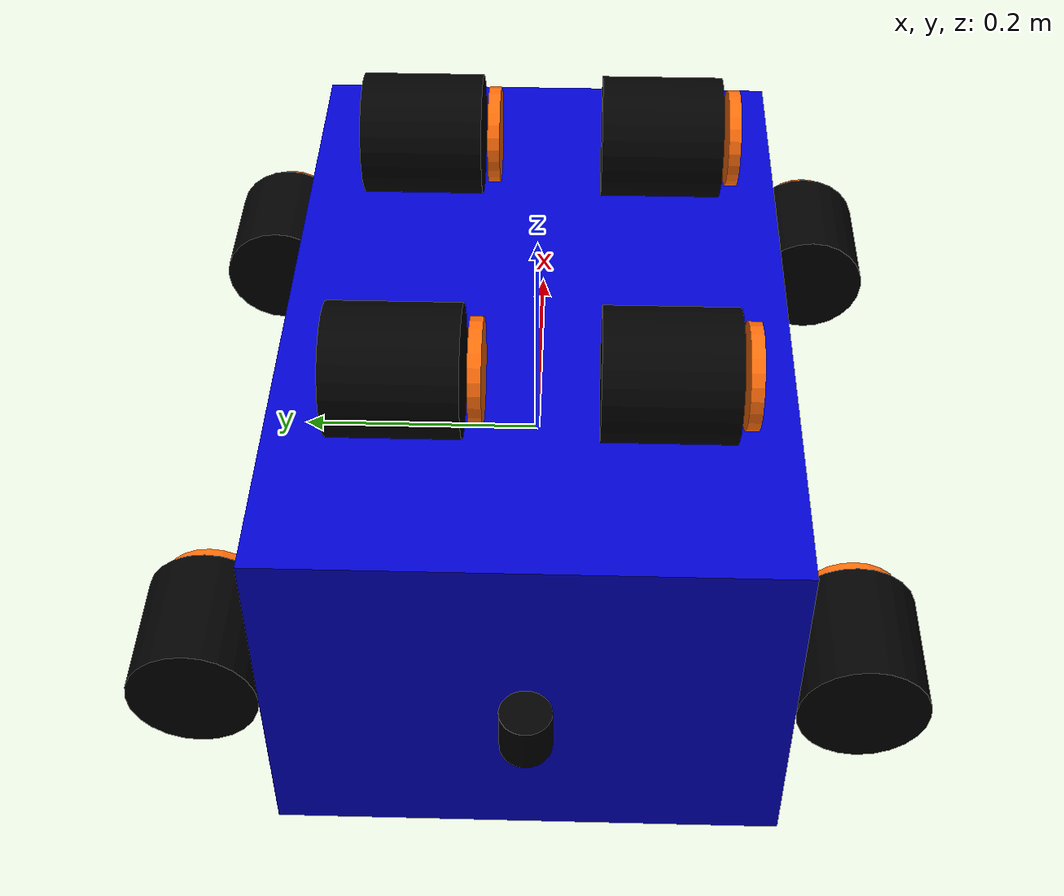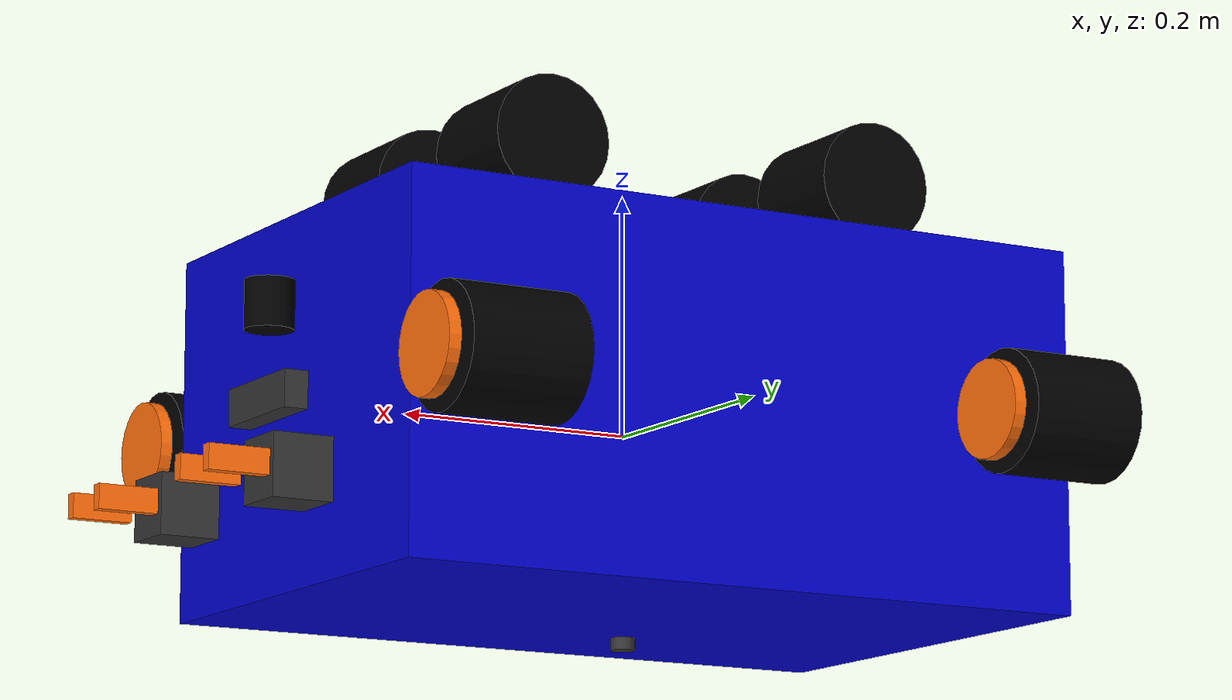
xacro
<?xml version="1.0"?>
<robot name="orca_rov" xmlns:xacro="http://www.ros.org/wiki/xacro">

  <!-- Include material definitions -->
  <xacro:include filename="$(find orca_description)/urdf/materials.xacro" />

  <!-- Include thruster macros -->
  <xacro:include filename="$(find orca_description)/urdf/thrusters.xacro" />

  <!-- Include sensor macros -->
  <xacro:include filename="$(find orca_description)/urdf/sensors.xacro" />

  <!-- Include gripper macros -->
  <xacro:include filename="$(find orca_description)/urdf/grippers.xacro" />

  <!-- Base Properties -->
  <xacro:property name="body_length" value="0.6" />
  <xacro:property name="body_width" value="0.4" />
  <xacro:property name="body_height" value="0.3" />
  <xacro:property name="body_mass" value="20.0" />

  <!-- Base Link (ROV Body) -->
  <link name="base_link">
    <inertial>
      <mass value="${body_mass}" />
      <origin xyz="0 0 0" rpy="0 0 0" />
      <inertia
        ixx="${body_mass/12.0 * (body_height*body_height + body_width*body_width)}"
        ixy="0.0"
        ixz="0.0"
        iyy="${body_mass/12.0 * (body_length*body_length + body_height*body_height)}"
        iyz="0.0"
        izz="${body_mass/12.0 * (body_length*body_length + body_width*body_width)}" />
    </inertial>

    <visual>
      <origin xyz="0 0 0" rpy="0 0 0" />
      <geometry>
        <box size="${body_length} ${body_width} ${body_height}" />
      </geometry>
      <material name="blue" />
    </visual>

    <collision>
      <origin xyz="0 0 0" rpy="0 0 0" />
      <geometry>
        <box size="${body_length} ${body_width} ${body_height}" />
      </geometry>
    </collision>
  </link>

  <!-- Add thrusters -->
  <xacro:t200_thruster name="thruster_front_right" parent="base_link" xyz="${body_length/2-0.05} ${-body_width/2-0.05} 0" rpy="0 ${pi/2} 0" />
  <xacro:t200_thruster name="thruster_front_left" parent="base_link" xyz="${body_length/2-0.05} ${body_width/2+0.05} 0" rpy="0 ${pi/2} 0" />
  <xacro:t200_thruster name="thruster_rear_right" parent="base_link" xyz="${-body_length/2+0.05} ${-body_width/2-0.05} 0" rpy="0 ${pi/2} 0" />
  <xacro:t200_thruster name="thruster_rear_left" parent="base_link" xyz="${-body_length/2+0.05} ${body_width/2+0.05} 0" rpy="0 ${pi/2} 0" />

  <xacro:t200_thruster name="thruster_top_front_right" parent="base_link" xyz="${body_length/4} ${-body_width/4} ${body_height/2+0.05}" rpy="${pi/2} 0 0" />
  <xacro:t200_thruster name="thruster_top_front_left" parent="base_link" xyz="${body_length/4} ${body_width/4} ${body_height/2+0.05}" rpy="${pi/2} 0 0" />
  <xacro:t200_thruster name="thruster_top_rear_right" parent="base_link" xyz="${-body_length/4} ${-body_width/4} ${body_height/2+0.05}" rpy="${pi/2} 0 0" />
  <xacro:t200_thruster name="thruster_top_rear_left" parent="base_link" xyz="${-body_length/4} ${body_width/4} ${body_height/2+0.05}" rpy="${pi/2} 0 0" />

  <!-- Add cameras -->
  <xacro:realsense_d415 name="realsense" parent="base_link" xyz="${body_length/2+0.02} 0 0" rpy="0 0 0" />
  <xacro:hikvision_camera name="front_camera" parent="base_link" xyz="${body_length/2+0.02} 0 ${body_height/4}" rpy="0 0 0" />
  <xacro:generic_camera name="rear_camera" parent="base_link" xyz="${-body_length/2-0.02} 0 0" rpy="0 ${pi} 0" />

  <!-- Add grippers -->
  <xacro:newton_gripper name="gripper_right" parent="base_link" xyz="${body_length/2+0.05} ${-body_width/4} ${-body_height/4}" rpy="0 0 0" />
  <xacro:newton_gripper name="gripper_left" parent="base_link" xyz="${body_length/2+0.05} ${body_width/4} ${-body_height/4}" rpy="0 0 0" />

  <!-- Add pressure sensor -->
  <xacro:pressure_sensor name="pressure" parent="base_link" xyz="0 0 ${-body_height/2-0.02}" rpy="0 0 0" />

  <!-- Add IMU (representing the Pixhawk) -->
  <xacro:imu_sensor name="imu" parent="base_link" xyz="0 0 0" rpy="0 0 0" />

</robot>

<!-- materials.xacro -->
<robot xmlns:xacro="http://www.ros.org/wiki/xacro">

  <material name="black">
    <color rgba="0.0 0.0 0.0 1.0"/>
  </material>

  <material name="blue">
    <color rgba="0.0 0.0 0.8 1.0"/>
  </material>

  <material name="green">
    <color rgba="0.0 0.8 0.0 1.0"/>
  </material>

  <material name="grey">
    <color rgba="0.2 0.2 0.2 1.0"/>
  </material>

  <material name="orange">
    <color rgba="1.0 0.423529411765 0.0392156862745 1.0"/>
  </material>

  <material name="brown">
    <color rgba="0.870588235294 0.811764705882 0.764705882353 1.0"/>
  </material>

  <material name="red">
    <color rgba="0.8 0.0 0.0 1.0"/>
  </material>

  <material name="white">
    <color rgba="1.0 1.0 1.0 1.0"/>
  </material>

</robot>

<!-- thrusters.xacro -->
<robot xmlns:xacro="http://www.ros.org/wiki/xacro">

  <!-- Constants -->
  <xacro:property name="pi" value="3.1415926535897931" />

  <!-- T200 Thruster Macro -->
  <xacro:macro name="t200_thruster" params="name parent xyz rpy">
    <joint name="${name}_joint" type="fixed">
      <parent link="${parent}"/>
      <child link="${name}_link"/>
      <origin xyz="${xyz}" rpy="${rpy}"/>
    </joint>

    <link name="${name}_link">
      <inertial>
        <mass value="0.35"/>
        <origin xyz="0 0 0" rpy="0 0 0"/>
        <inertia ixx="0.001" ixy="0.0" ixz="0.0" iyy="0.001" iyz="0.0" izz="0.001"/>
      </inertial>

      <visual>
        <origin xyz="0 0 0" rpy="0 0 0"/>
        <geometry>
          <cylinder radius="0.05" length="0.1"/>
        </geometry>
        <material name="black"/>
      </visual>

      <collision>
        <origin xyz="0 0 0" rpy="0 0 0"/>
        <geometry>
          <cylinder radius="0.05" length="0.1"/>
        </geometry>
      </collision>
    </link>

    <!-- Propeller -->
    <joint name="${name}_prop_joint" type="continuous">
      <parent link="${name}_link"/>
      <child link="${name}_prop_link"/>
      <origin xyz="0 0 0.06" rpy="0 0 0"/>
      <axis xyz="0 0 1"/>
    </joint>

    <link name="${name}_prop_link">
      <inertial>
        <mass value="0.01"/>
        <origin xyz="0 0 0" rpy="0 0 0"/>
        <inertia ixx="0.0001" ixy="0.0" ixz="0.0" iyy="0.0001" iyz="0.0" izz="0.0001"/>
      </inertial>

      <visual>
        <origin xyz="0 0 0" rpy="0 0 0"/>
        <geometry>
          <cylinder radius="0.04" length="0.01"/>
        </geometry>
        <material name="orange"/>
      </visual>

      <collision>
        <origin xyz="0 0 0" rpy="0 0 0"/>
        <geometry>
          <cylinder radius="0.04" length="0.01"/>
        </geometry>
      </collision>
    </link>

    <!-- Gazebo plugin for thruster -->
    <gazebo>
      <plugin name="${name}_thruster_plugin" filename="libgazebo_ros_force.so">
        <bodyName>${name}_prop_link</bodyName>
        <topicName>${name}/thrust</topicName>
        <frameName>${name}_prop_link</frameName>
      </plugin>
    </gazebo>
  </xacro:macro>

</robot>

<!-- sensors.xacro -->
<robot xmlns:xacro="http://www.ros.org/wiki/xacro">

  <!-- RealSense D415 Camera -->
  <xacro:macro name="realsense_d415" params="name parent xyz rpy">
    <joint name="${name}_joint" type="fixed">
      <parent link="${parent}"/>
      <child link="${name}_link"/>
      <origin xyz="${xyz}" rpy="${rpy}"/>
    </joint>

    <link name="${name}_link">
      <inertial>
        <mass value="0.1"/>
        <origin xyz="0 0 0" rpy="0 0 0"/>
        <inertia ixx="0.0001" ixy="0.0" ixz="0.0" iyy="0.0001" iyz="0.0" izz="0.0001"/>
      </inertial>

      <visual>
        <origin xyz="0 0 0" rpy="0 0 0"/>
        <geometry>
          <box size="0.02 0.1 0.03"/>
        </geometry>
        <material name="grey"/>
      </visual>

      <collision>
        <origin xyz="0 0 0" rpy="0 0 0"/>
        <geometry>
          <box size="0.02 0.1 0.03"/>
        </geometry>
      </collision>
    </link>

    <!-- Camera frame for color image -->
    <joint name="${name}_color_joint" type="fixed">
      <parent link="${name}_link"/>
      <child link="${name}_color_frame"/>
      <origin xyz="0 0 0" rpy="0 0 0"/>
    </joint>

    <link name="${name}_color_frame"/>

    <!-- Camera frame for depth image -->
    <joint name="${name}_depth_joint" type="fixed">
      <parent link="${name}_link"/>
      <child link="${name}_depth_frame"/>
      <origin xyz="0 0 0" rpy="0 0 0"/>
    </joint>

    <link name="${name}_depth_frame"/>

    <!-- Gazebo plugin for RealSense camera -->
    <gazebo reference="${name}_link">
      <sensor type="depth" name="${name}_depth_sensor">
        <update_rate>30.0</update_rate>
        <camera>
          <horizontal_fov>1.047198</horizontal_fov>
          <image>
            <width>640</width>
            <height>480</height>
            <format>R8G8B8</format>
          </image>
          <clip>
            <near>0.05</near>
            <far>10.0</far>
          </clip>
        </camera>
        <plugin name="${name}_controller" filename="libgazebo_ros_openni_kinect.so">
          <baseline>0.2</baseline>
          <alwaysOn>true</alwaysOn>
          <updateRate>30.0</updateRate>
          <cameraName>${name}</cameraName>
          <imageTopicName>color/image_raw</imageTopicName>
          <cameraInfoTopicName>color/camera_info</cameraInfoTopicName>
          <depthImageTopicName>depth/image_raw</depthImageTopicName>
          <depthImageInfoTopicName>depth/camera_info</depthImageInfoTopicName>
          <pointCloudTopicName>depth/points</pointCloudTopicName>
          <frameName>${name}_depth_frame</frameName>
          <pointCloudCutoff>0.5</pointCloudCutoff>
          <pointCloudCutoffMax>5.0</pointCloudCutoffMax>
          <distortionK1>0.0</distortionK1>
          <distortionK2>0.0</distortionK2>
          <distortionK3>0.0</distortionK3>
          <distortionT1>0.0</distortionT1>
          <distortionT2>0.0</distortionT2>
          <CxPrime>0.0</CxPrime>
          <Cx>0.0</Cx>
          <Cy>0.0</Cy>
          <focalLength>0.0</focalLength>
          <hackBaseline>0.0</hackBaseline>
        </plugin>
      </sensor>
    </gazebo>
  </xacro:macro>

  <!-- Hikvision Camera -->
  <xacro:macro name="hikvision_camera" params="name parent xyz rpy">
    <joint name="${name}_joint" type="fixed">
      <parent link="${parent}"/>
      <child link="${name}_link"/>
      <origin xyz="${xyz}" rpy="${rpy}"/>
    </joint>

    <link name="${name}_link">
      <inertial>
        <mass value="0.1"/>
        <origin xyz="0 0 0" rpy="0 0 0"/>
        <inertia ixx="0.0001" ixy="0.0" ixz="0.0" iyy="0.0001" iyz="0.0" izz="0.0001"/>
      </inertial>

      <visual>
        <origin xyz="0 0 0" rpy="0 0 0"/>
        <geometry>
          <cylinder radius="0.02" length="0.04"/>
        </geometry>
        <material name="black"/>
      </visual>

      <collision>
        <origin xyz="0 0 0" rpy="0 0 0"/>
        <geometry>
          <cylinder radius="0.02" length="0.04"/>
        </geometry>
      </collision>
    </link>

    <!-- Camera frame -->
    <joint name="${name}_optical_joint" type="fixed">
      <parent link="${name}_link"/>
      <child link="${name}_optical_frame"/>
      <origin xyz="0 0 0" rpy="${-pi/2} 0 ${-pi/2}"/>
    </joint>

    <link name="${name}_optical_frame"/>

    <!-- Gazebo plugin for camera -->
    <gazebo reference="${name}_link">
      <sensor type="camera" name="${name}_camera">
        <update_rate>30.0</update_rate>
        <camera>
          <horizontal_fov>1.3962634</horizontal_fov>
          <image>
            <width>1920</width>
            <height>1080</height>
            <format>R8G8B8</format>
          </image>
          <clip>
            <near>0.02</near>
            <far>300</far>
          </clip>
          <noise>
            <type>gaussian</type>
            <mean>0.0</mean>
            <stddev>0.007</stddev>
          </noise>
        </camera>
        <plugin name="${name}_controller" filename="libgazebo_ros_camera.so">
          <alwaysOn>true</alwaysOn>
          <updateRate>30.0</updateRate>
          <cameraName>${name}</cameraName>
          <imageTopicName>image_raw</imageTopicName>
          <cameraInfoTopicName>camera_info</cameraInfoTopicName>
          <frameName>${name}_optical_frame</frameName>
          <hackBaseline>0.0</hackBaseline>
          <distortionK1>0.0</distortionK1>
          <distortionK2>0.0</distortionK2>
          <distortionK3>0.0</distortionK3>
          <distortionT1>0.0</distortionT1>
          <distortionT2>0.0</distortionT2>
        </plugin>
      </sensor>
    </gazebo>
  </xacro:macro>

  <!-- Generic Camera -->
  <xacro:macro name="generic_camera" params="name parent xyz rpy">
    <joint name="${name}_joint" type="fixed">
      <parent link="${parent}"/>
      <child link="${name}_link"/>
      <origin xyz="${xyz}" rpy="${rpy}"/>
    </joint>

    <link name="${name}_link">
      <inertial>
        <mass value="0.1"/>
        <origin xyz="0 0 0" rpy="0 0 0"/>
        <inertia ixx="0.0001" ixy="0.0" ixz="0.0" iyy="0.0001" iyz="0.0" izz="0.0001"/>
      </inertial>

      <visual>
        <origin xyz="0 0 0" rpy="0 0 0"/>
        <geometry>
          <cylinder radius="0.02" length="0.04"/>
        </geometry>
        <material name="black"/>
      </visual>

      <collision>
        <origin xyz="0 0 0" rpy="0 0 0"/>
        <geometry>
          <cylinder radius="0.02" length="0.04"/>
        </geometry>
      </collision>
    </link>

    <!-- Camera frame -->
    <joint name="${name}_optical_joint" type="fixed">
      <parent link="${name}_link"/>
      <child link="${name}_optical_frame"/>
      <origin xyz="0 0 0" rpy="${-pi/2} 0 ${-pi/2}"/>
    </joint>

    <link name="${name}_optical_frame"/>

    <!-- Gazebo plugin for camera -->
    <gazebo reference="${name}_link">
      <sensor type="camera" name="${name}_camera">
        <update_rate>30.0</update_rate>
        <camera>
          <horizontal_fov>1.3962634</horizontal_fov>
          <image>
            <width>640</width>
            <height>480</height>
            <format>R8G8B8</format>
          </image>
          <clip>
            <near>0.02</near>
            <far>300</far>
          </clip>
          <noise>
            <type>gaussian</type>
            <mean>0.0</mean>
            <stddev>0.007</stddev>
          </noise>
        </camera>
        <plugin name="${name}_controller" filename="libgazebo_ros_camera.so">
          <alwaysOn>true</alwaysOn>
          <updateRate>30.0</updateRate>
          <cameraName>${name}</cameraName>
          <imageTopicName>image_raw</imageTopicName>
          <cameraInfoTopicName>camera_info</cameraInfoTopicName>
          <frameName>${name}_optical_frame</frameName>
          <hackBaseline>0.0</hackBaseline>
          <distortionK1>0.0</distortionK1>
          <distortionK2>0.0</distortionK2>
          <distortionK3>0.0</distortionK3>
          <distortionT1>0.0</distortionT1>
          <distortionT2>0.0</distortionT2>
        </plugin>
      </sensor>
    </gazebo>
  </xacro:macro>

  <!-- Pressure Sensor -->
  <xacro:macro name="pressure_sensor" params="name parent xyz rpy">
    <joint name="${name}_joint" type="fixed">
      <parent link="${parent}"/>
      <child link="${name}_link"/>
      <origin xyz="${xyz}" rpy="${rpy}"/>
    </joint>

    <link name="${name}_link">
      <inertial>
        <mass value="0.01"/>
        <origin xyz="0 0 0" rpy="0 0 0"/>
        <inertia ixx="0.00001" ixy="0.0" ixz="0.0" iyy="0.00001" iyz="0.0" izz="0.00001"/>
      </inertial>

      <visual>
        <origin xyz="0 0 0" rpy="0 0 0"/>
        <geometry>
          <cylinder radius="0.01" length="0.01"/>
        </geometry>
        <material name="grey"/>
      </visual>

      <collision>
        <origin xyz="0 0 0" rpy="0 0 0"/>
        <geometry>
          <cylinder radius="0.01" length="0.01"/>
        </geometry>
      </collision>
    </link>

    <!-- Gazebo plugin for pressure sensor -->
    <gazebo reference="${name}_link">
      <sensor name="${name}_sensor" type="altimeter">
        <update_rate>30.0</update_rate>
        <plugin name="${name}_plugin" filename="libgazebo_ros_altimeter.so">
          <topicName>${name}/data</topicName>
          <frameName>${name}_link</frameName>
        </plugin>
      </sensor>
    </gazebo>
  </xacro:macro>

  <!-- IMU Sensor -->
  <xacro:macro name="imu_sensor" params="name parent xyz rpy">
    <joint name="${name}_joint" type="fixed">
      <parent link="${parent}"/>
      <child link="${name}_link"/>
      <origin xyz="${xyz}" rpy="${rpy}"/>
    </joint>

    <link name="${name}_link">
      <inertial>
        <mass value="0.01"/>
        <origin xyz="0 0 0" rpy="0 0 0"/>
        <inertia ixx="0.00001" ixy="0.0" ixz="0.0" iyy="0.00001" iyz="0.0" izz="0.00001"/>
      </inertial>

      <visual>
        <origin xyz="0 0 0" rpy="0 0 0"/>
        <geometry>
          <box size="0.02 0.02 0.01"/>
        </geometry>
        <material name="red"/>
      </visual>

      <collision>
        <origin xyz="0 0 0" rpy="0 0 0"/>
        <geometry>
          <box size="0.02 0.02 0.01"/>
        </geometry>
      </collision>
    </link>

    <!-- Gazebo plugin for IMU -->
    <gazebo reference="${name}_link">
      <gravity>true</gravity>
      <sensor name="${name}_sensor" type="imu">
        <update_rate>100.0</update_rate>
        <plugin name="${name}_plugin" filename="libgazebo_ros_imu_sensor.so">
          <topicName>${name}/data</topicName>
          <bodyName>${name}_link</bodyName>
          <frameName>${name}_link</frameName>
          <updateRateHZ>100.0</updateRateHZ>
          <gaussianNoise>0.01</gaussianNoise>
          <xyzOffset>0 0 0</xyzOffset>
          <rpyOffset>0 0 0</rpyOffset>
        </plugin>
      </sensor>
    </gazebo>
  </xacro:macro>

</robot>

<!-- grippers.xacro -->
<robot xmlns:xacro="http://www.ros.org/wiki/xacro">

  <!-- Newton Gripper Macro -->
  <xacro:macro name="newton_gripper" params="name parent xyz rpy">
    <joint name="${name}_base_joint" type="fixed">
      <parent link="${parent}"/>
      <child link="${name}_base_link"/>
      <origin xyz="${xyz}" rpy="${rpy}"/>
    </joint>

    <link name="${name}_base_link">
      <inertial>
        <mass value="0.2"/>
        <origin xyz="0 0 0" rpy="0 0 0"/>
        <inertia ixx="0.0001" ixy="0.0" ixz="0.0" iyy="0.0001" iyz="0.0" izz="0.0001"/>
      </inertial>

      <visual>
        <origin xyz="0 0 0" rpy="0 0 0"/>
        <geometry>
          <box size="0.05 0.05 0.05"/>
        </geometry>
        <material name="grey"/>
      </visual>

      <collision>
        <origin xyz="0 0 0" rpy="0 0 0"/>
        <geometry>
          <box size="0.05 0.05 0.05"/>
        </geometry>
      </collision>
    </link>

    <!-- Left Jaw -->
    <joint name="${name}_left_joint" type="revolute">
      <parent link="${name}_base_link"/>
      <child link="${name}_left_link"/>
      <origin xyz="0.03 0.025 0" rpy="0 0 0"/>
      <axis xyz="0 0 1"/>
      <limit lower="0" upper="0.7" effort="10" velocity="1.0"/>
    </joint>

    <link name="${name}_left_link">
      <inertial>
        <mass value="0.05"/>
        <origin xyz="0.025 0 0" rpy="0 0 0"/>
        <inertia ixx="0.00001" ixy="0.0" ixz="0.0" iyy="0.00001" iyz="0.0" izz="0.00001"/>
      </inertial>

      <visual>
        <origin xyz="0.025 0 0" rpy="0 0 0"/>
        <geometry>
          <box size="0.05 0.01 0.02"/>
        </geometry>
        <material name="orange"/>
      </visual>

      <collision>
        <origin xyz="0.025 0 0" rpy="0 0 0"/>
        <geometry>
          <box size="0.05 0.01 0.02"/>
        </geometry>
      </collision>
    </link>

    <!-- Right Jaw -->
    <joint name="${name}_right_joint" type="revolute">
      <parent link="${name}_base_link"/>
      <child link="${name}_right_link"/>
      <origin xyz="0.03 -0.025 0" rpy="0 0 0"/>
      <axis xyz="0 0 1"/>
      <limit lower="-0.7" upper="0" effort="10" velocity="1.0"/>
      <mimic joint="${name}_left_joint" multiplier="-1" offset="0"/>
    </joint>

    <link name="${name}_right_link">
      <inertial>
        <mass value="0.05"/>
        <origin xyz="0.025 0 0" rpy="0 0 0"/>
        <inertia ixx="0.00001" ixy="0.0" ixz="0.0" iyy="0.00001" iyz="0.0" izz="0.00001"/>
      </inertial>

      <visual>
        <origin xyz="0.025 0 0" rpy="0 0 0"/>
        <geometry>
          <box size="0.05 0.01 0.02"/>
        </geometry>
        <material name="orange"/>
      </visual>

      <collision>
        <origin xyz="0.025 0 0" rpy="0 0 0"/>
        <geometry>
          <box size="0.05 0.01 0.02"/>
        </geometry>
      </collision>
    </link>

    <!-- Gazebo plugin for gripper -->
    <gazebo>
      <plugin name="${name}_mimic_joint_plugin" filename="libgazebo_mimic_joint_plugin.so">
        <joint>${name}_left_joint</joint>
        <mimicJoint>${name}_right_joint</mimicJoint>
        <multiplier>-1.0</multiplier>
        <offset>0.0</offset>
        <maxEffort>100.0</maxEffort>
      </plugin>
    </gazebo>

    <gazebo>
      <plugin name="${name}_gripper_plugin" filename="libgazebo_ros_control.so">
        <robotNamespace>${name}</robotNamespace>
      </plugin>
    </gazebo>
  </xacro:macro>

</robot>
